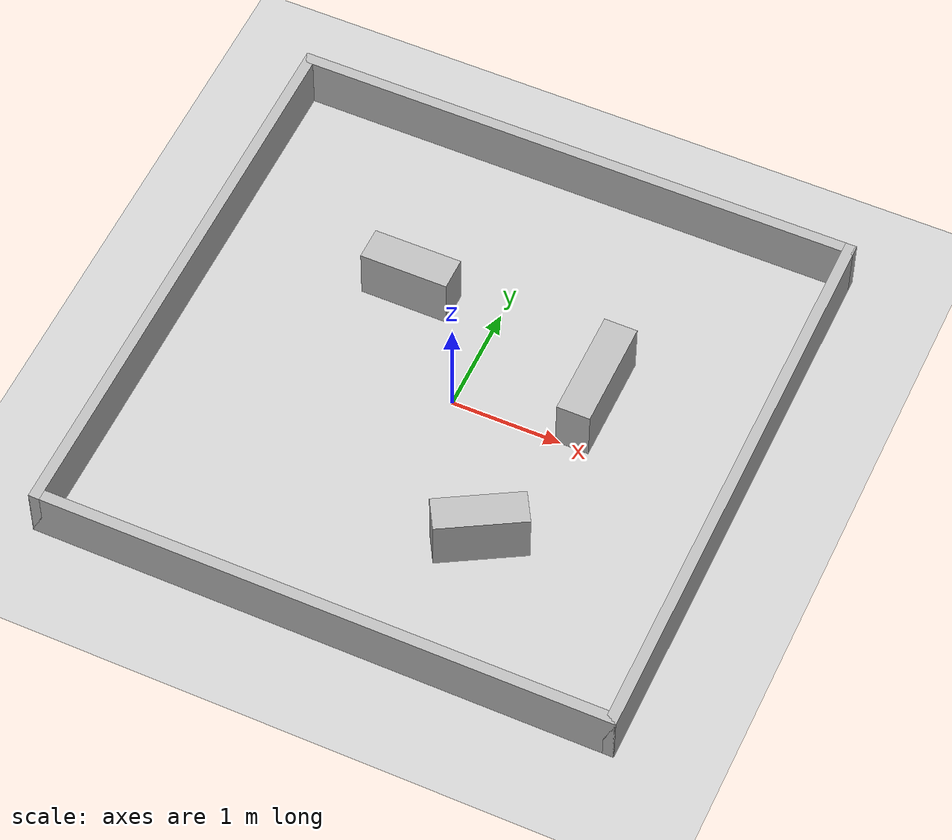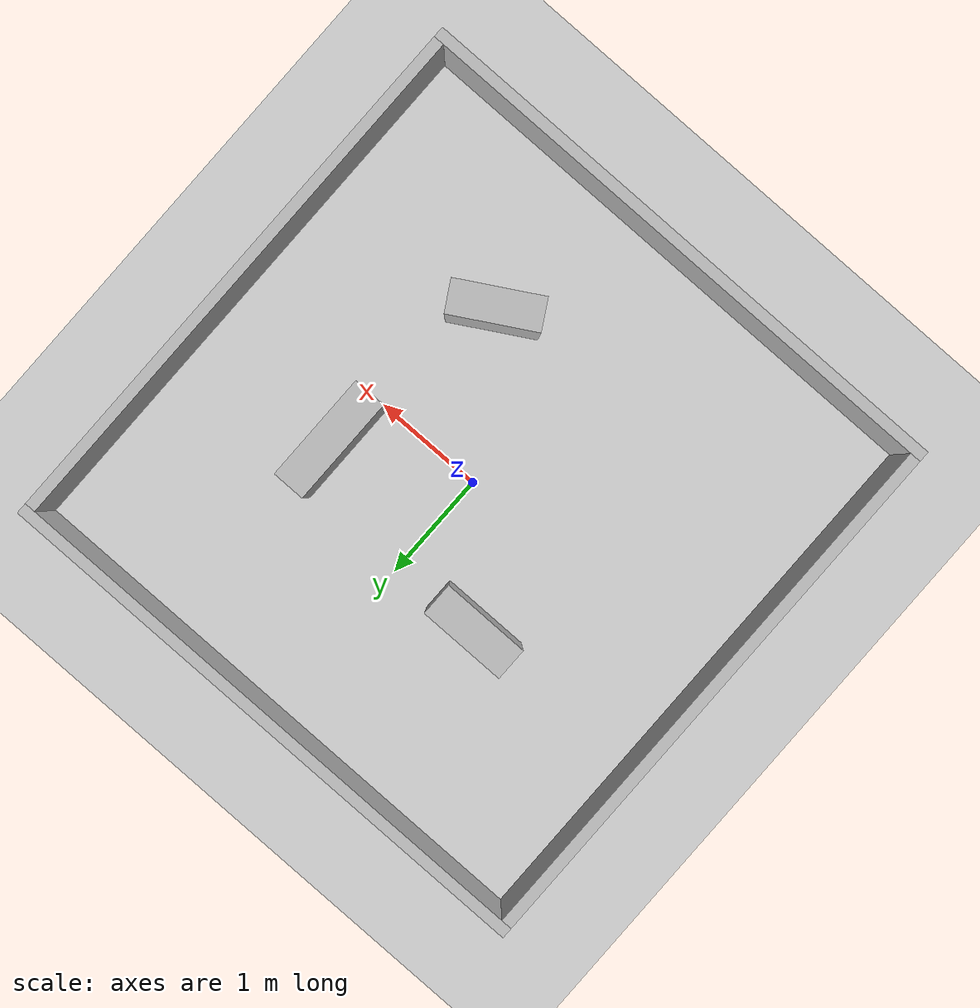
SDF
<?xml version="1.0" ?>

<sdf version="1.9">

  <world name="empty">

    <!-- Physics -->
    <physics name="physics" type="ignored">
      <max_step_size>0.001</max_step_size>
      <real_time_factor>1.0</real_time_factor>
    </physics>

    <!-- Gazebo core systems -->
    <plugin
      filename="gz-sim-physics-system"
      name="gz::sim::systems::Physics"/>

    <plugin
      filename="gz-sim-user-commands-system"
      name="gz::sim::systems::UserCommands"/>

    <plugin
      filename="gz-sim-scene-broadcaster-system"
      name="gz::sim::systems::SceneBroadcaster"/>

    <!-- Required for GPU LiDAR / camera sensors -->
    <plugin
      filename="gz-sim-sensors-system"
      name="gz::sim::systems::Sensors">
      <render_engine>ogre2</render_engine>
    </plugin>

    <!-- Ground -->
    <model name="ground_plane">
      <static>true</static>

      <link name="link">

        <collision name="collision">
          <geometry>
            <plane>
              <normal>0 0 1</normal>
              <size>100 100</size>
            </plane>
          </geometry>
        </collision>

        <visual name="visual">
          <geometry>
            <plane>
              <normal>0 0 1</normal>
              <size>100 100</size>
            </plane>
          </geometry>

          <material>
            <ambient>0.8 0.8 0.8 1</ambient>
            <diffuse>0.8 0.8 0.8 1</diffuse>
            <specular>0.0 0.0 0.0 1</specular>
          </material>

        </visual>

      </link>
    </model>

  <!-- 5 m x 5 m Arena Walls                                -->

  <!-- North wall -->
  <model name="north_wall">
    <static>true</static>
    <pose>0 2.55 0.25 0 0 0</pose>

    <link name="link">
      <collision name="collision">
        <geometry>
          <box>
            <size>5.2 0.1 0.5</size>
          </box>
        </geometry>
      </collision>

      <visual name="visual">
        <geometry>
          <box>
            <size>5.2 0.1 0.5</size>
          </box>
        </geometry>
      </visual>
    </link>
  </model>

  <!-- South wall -->
  <model name="south_wall">
    <static>true</static>
    <pose>0 -2.55 0.25 0 0 0</pose>

    <link name="link">
      <collision name="collision">
        <geometry>
          <box>
            <size>5.2 0.1 0.5</size>
          </box>
        </geometry>
      </collision>

      <visual name="visual">
        <geometry>
          <box>
            <size>5.2 0.1 0.5</size>
          </box>
        </geometry>
      </visual>
    </link>
  </model>

  <!-- East wall -->
  <model name="east_wall">
    <static>true</static>
    <pose>2.55 0 0.25 0 0 0</pose>

    <link name="link">
      <collision name="collision">
        <geometry>
          <box>
            <size>0.1 5.2 0.5</size>
          </box>
        </geometry>
      </collision>

      <visual name="visual">
        <geometry>
          <box>
            <size>0.1 5.2 0.5</size>
          </box>
        </geometry>
      </visual>
    </link>
  </model>

  <!-- West wall -->
  <model name="west_wall">
    <static>true</static>
    <pose>-2.55 0 0.25 0 0 0</pose>

    <link name="link">
      <collision name="collision">
        <geometry>
          <box>
            <size>0.1 5.2 0.5</size>
          </box>
        </geometry>
      </collision>

      <visual name="visual">
        <geometry>
          <box>
            <size>0.1 5.2 0.5</size>
          </box>
        </geometry>
      </visual>
    </link>
  </model>

  <!-- Internal Obstacles - Arena v1                         -->

  <!-- Obstacle 1: Horizontal obstacle                       -->
  <!-- Position: (-0.8, 0.9)                                -->
  <!-- Size: 0.8 x 0.3 x 0.5 m                              -->
  <model name="obstacle_1">
    <static>true</static>

    <!-- x y z roll pitch yaw -->
    <pose>-0.8 0.9 0.25 0 0 0</pose>

    <link name="link">

      <collision name="collision">
        <geometry>
          <box>
            <size>0.8 0.3 0.5</size>
          </box>
        </geometry>
      </collision>

      <visual name="visual">
        <geometry>
          <box>
            <size>0.8 0.3 0.5</size>
          </box>
        </geometry>
      </visual>

    </link>
  </model>

  <!-- Obstacle 2: Vertical obstacle                         -->
  <!-- Position: (1.1, 0.5)                                 -->
  <!-- Size: 0.3 x 1.0 x 0.5 m                              -->
  <model name="obstacle_2">
    <static>true</static>

    <!-- x y z roll pitch yaw -->
    <pose>1.1 0.5 0.25 0 0 0</pose>

    <link name="link">

      <collision name="collision">
        <geometry>
          <box>
            <size>0.3 1.0 0.5</size>
          </box>
        </geometry>
      </collision>

      <visual name="visual">
        <geometry>
          <box>
            <size>0.3 1.0 0.5</size>
          </box>
        </geometry>
      </visual>

    </link>
  </model>

  <!-- Obstacle 3: Rotated obstacle                          -->
  <!-- Position: (0.8, -1.2)                                -->
  <!-- Size: 0.8 x 0.3 x 0.5 m                              -->
  <!-- Rotation: 30 degrees                                  -->
  <model name="obstacle_3">
    <static>true</static>

    <!--
      pose format:
      x y z roll pitch yaw

      30 degrees = pi / 6 ≈ 0.523599 rad
    -->
    <pose>0.8 -1.2 0.25 0 0 0.523599</pose>

    <link name="link">

      <collision name="collision">
        <geometry>
          <box>
            <size>0.8 0.3 0.5</size>
          </box>
        </geometry>
      </collision>

      <visual name="visual">
        <geometry>
          <box>
            <size>0.8 0.3 0.5</size>
          </box>
        </geometry>
      </visual>

    </link>
  </model>

    <!-- Lighting -->
    <light type="directional" name="sun">
      <cast_shadows>true</cast_shadows>

      <pose>0 0 10 0 0 0</pose>

      <diffuse>0.7 0.7 0.7 1</diffuse>
      <specular>0.0 0.0 0.0 1</specular>

      <direction>-0.5 0.1 -0.9</direction>
    </light>

    <scene>
      <ambient>0.5 0.5 0.5 1</ambient>
      <background>0.15 0.15 0.15 1</background>
      <shadows>true</shadows>
    </scene>

  </world>

</sdf>
